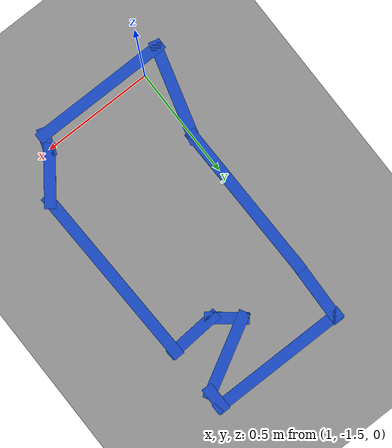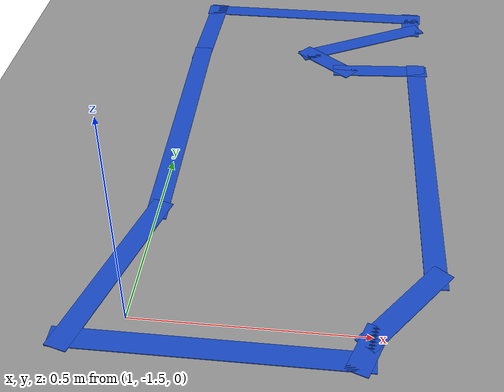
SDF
<?xml version="1.0" ?>
<sdf version="1.8">
  <world name="track_world">
    <plugin filename="gz-sim-physics-system" name="gz::sim::systems::Physics"/>
    <plugin filename="gz-sim-user-commands-system" name="gz::sim::systems::UserCommands"/>
    <plugin filename="gz-sim-scene-broadcaster-system" name="gz::sim::systems::SceneBroadcaster"/>
    <plugin filename="gz-sim-sensors-system" name="gz::sim::systems::Sensors">
      <render_engine>ogre2</render_engine>
    </plugin>

    <light type="directional" name="sun">
      <cast_shadows>true</cast_shadows>
      <pose>0 0 10 0 0 0</pose>
      <diffuse>0.8 0.8 0.8 1</diffuse>
      <specular>0.2 0.2 0.2 1</specular>
      <direction>-0.5 0.1 -0.9</direction>
    </light>

    <model name="ground_plane">
      <static>true</static>
      <link name="link">
        <collision name="collision">
          <geometry><plane><normal>0 0 1</normal><size>100 100</size></plane></geometry>
        </collision>
        <visual name="visual">
          <geometry><plane><normal>0 0 1</normal><size>100 100</size></plane></geometry>
          <material>
            <ambient>0.6 0.6 0.6 1</ambient>
            <diffuse>0.6 0.6 0.6 1</diffuse>
            <specular>0.0 0.0 0.0 1</specular>
          </material>
        </visual>
      </link>
    </model>

    <model name="ortho_camera_fix">
      <static>true</static>
      <pose>0.8 -0.8 4.5 0 1.5707 1.5707</pose>
      <link name="link">
        <sensor name="camera" type="camera">
          <camera>
            <horizontal_fov>1.4</horizontal_fov>
            <image><width>1280</width><height>720</height></image>
            <clip><near>0.1</near><far>100</far></clip>
          </camera>
          <always_on>1</always_on>
          <update_rate>30</update_rate>
          <topic>/camera/image_raw</topic>
        </sensor>
      </link>
    </model>

    <model name="blue_tape_track">
      <static>true</static>

      <link name="line_0">
        <pose>1.564 -1.4144999999999999 0.001 0 0 0.9282315473159962</pose>
        <visual name="visual">
          <geometry><box><size>0.27360009363293836 0.05 0.002</size></box></geometry>
          <material>
            <ambient>0.1 0.3 0.8 1</ambient>
            <diffuse>0.1 0.3 0.8 1</diffuse>
          </material>
        </visual>
      </link>
      <link name="line_1">
        <pose>1.6145 -0.9289999999999999 0.001 0 0 1.60453352109253</pose>
        <visual name="visual">
          <geometry><box><size>0.8604554953275041 0.05 0.002</size></box></geometry>
          <material>
            <ambient>0.1 0.3 0.8 1</ambient>
            <diffuse>0.1 0.3 0.8 1</diffuse>
          </material>
        </visual>
      </link>
      <link name="line_2">
        <pose>1.5005000000000002 -0.5359999999999999 0.001 0 0 -3.0720532209085</pose>
        <visual name="visual">
          <geometry><box><size>0.26148697228356976 0.05 0.002</size></box></geometry>
          <material>
            <ambient>0.1 0.3 0.8 1</ambient>
            <diffuse>0.1 0.3 0.8 1</diffuse>
          </material>
        </visual>
      </link>
      <link name="line_3">
        <pose>1.351 -0.5035 0.001 0 0 2.4631296441873287</pose>
        <visual name="visual">
          <geometry><box><size>0.1858769240170732 0.05 0.002</size></box></geometry>
          <material>
            <ambient>0.1 0.3 0.8 1</ambient>
            <diffuse>0.1 0.3 0.8 1</diffuse>
          </material>
        </visual>
      </link>
      <link name="line_4">
        <pose>1.4460000000000002 -0.3844999999999999 0.001 0 0 0.5044412918686716</pose>
        <visual name="visual">
          <geometry><box><size>0.38897568299191965 0.05 0.002</size></box></geometry>
          <material>
            <ambient>0.1 0.3 0.8 1</ambient>
            <diffuse>0.1 0.3 0.8 1</diffuse>
          </material>
        </visual>
      </link>
      <link name="line_5">
        <pose>1.59 -0.2709999999999999 0.001 0 0 1.5707963267948966</pose>
        <visual name="visual">
          <geometry><box><size>0.128 0.05 0.002</size></box></geometry>
          <material>
            <ambient>0.1 0.3 0.8 1</ambient>
            <diffuse>0.1 0.3 0.8 1</diffuse>
          </material>
        </visual>
      </link>
      <link name="line_6">
        <pose>1.2925 -0.23699999999999988 0.001 0 0 3.141592653589793</pose>
        <visual name="visual">
          <geometry><box><size>0.655 0.05 0.002</size></box></geometry>
          <material>
            <ambient>0.1 0.3 0.8 1</ambient>
            <diffuse>0.1 0.3 0.8 1</diffuse>
          </material>
        </visual>
      </link>
      <link name="line_7">
        <pose>0.991 -0.3659999999999999 0.001 0 0 -1.6017941466771308</pose>
        <visual name="visual">
          <geometry><box><size>0.3181240012087214 0.05 0.002</size></box></geometry>
          <material>
            <ambient>0.1 0.3 0.8 1</ambient>
            <diffuse>0.1 0.3 0.8 1</diffuse>
          </material>
        </visual>
      </link>
      <link name="line_8">
        <pose>0.9924999999999999 -0.8349999999999999 0.001 0 0 -1.55462126699507</pose>
        <visual name="visual">
          <geometry><box><size>0.7400889647685809 0.05 0.002</size></box></geometry>
          <material>
            <ambient>0.1 0.3 0.8 1</ambient>
            <diffuse>0.1 0.3 0.8 1</diffuse>
          </material>
        </visual>
      </link>
      <link name="line_9">
        <pose>0.9435 -1.3684999999999998 0.001 0 0 -1.8453378893823245</pose>
        <visual name="visual">
          <geometry><box><size>0.4620572098594925 0.05 0.002</size></box></geometry>
          <material>
            <ambient>0.1 0.3 0.8 1</ambient>
            <diffuse>0.1 0.3 0.8 1</diffuse>
          </material>
        </visual>
      </link>
      <link name="line_10">
        <pose>1.1835 -1.5619999999999998 0.001 0 0 0.0</pose>
        <visual name="visual">
          <geometry><box><size>0.649 0.05 0.002</size></box></geometry>
          <material>
            <ambient>0.1 0.3 0.8 1</ambient>
            <diffuse>0.1 0.3 0.8 1</diffuse>
          </material>
        </visual>
      </link>
      <link name="line_11">
        <pose>1.4889999999999999 -1.531 0.001 0 0 1.229817373298546</pose>
        <visual name="visual">
          <geometry><box><size>0.12578753681359395 0.05 0.002</size></box></geometry>
          <material>
            <ambient>0.1 0.3 0.8 1</ambient>
            <diffuse>0.1 0.3 0.8 1</diffuse>
          </material>
        </visual>
      </link>
    </model>
  </world>
</sdf>
